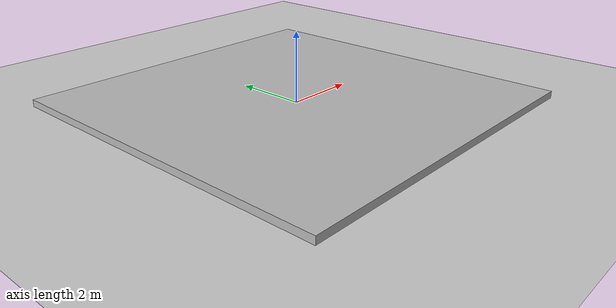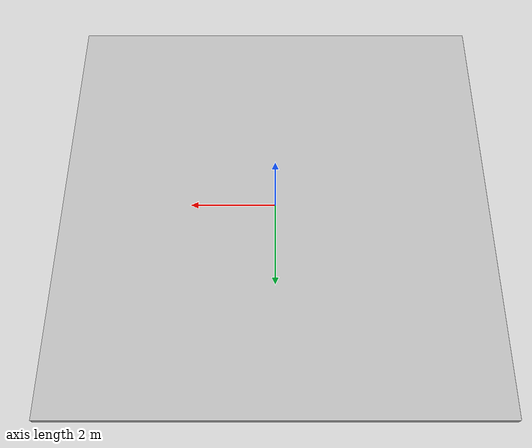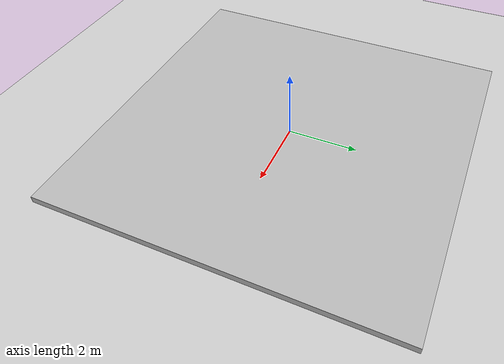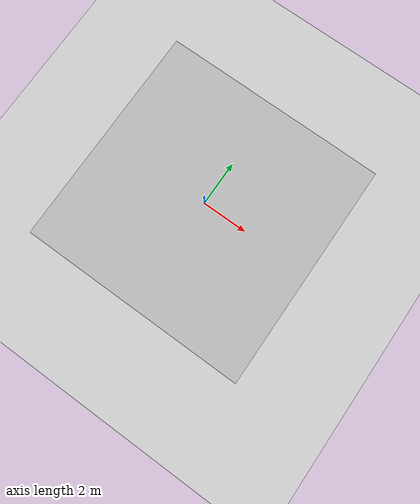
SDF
<?xml version="1.0"?>
<sdf version="1.6">
  <world name="world">

    <plugin name="gazebo_ros_state" filename="libgazebo_ros_state.so">
      <ros>
        <namespace>/demo</namespace>
        <argument>model_states:=model_states_demo</argument>
        <argument>link_states:=link_states_demo</argument>
      </ros>

      <update_rate>10.0</update_rate>
    </plugin>

  <include>
    <uri>model://sun</uri>
  </include>

    <model name='ground_plane'>
    <static>1</static>
    <link name='link'>
      <collision name='collision'>
        <geometry>
          <plane>
            <normal>0 0 1</normal>
            <size>100 100</size>
          </plane>
        </geometry>
        <surface>
          <contact>
            <collide_bitmask>65535</collide_bitmask>
            <ode/>
          </contact>

          <friction>
            <ode>
              <mu>0.7</mu>
              <mu2>0.7</mu2>
            </ode>
            <torsional>
              <ode/>
            </torsional>
          </friction>
          <bounce>
            <restitution_coefficient>0.5</restitution_coefficient>
            <threshold>0.00</threshold>
          </bounce>
        </surface>
        <max_contacts>10</max_contacts>
      </collision>
      <visual name='visual'>
        <cast_shadows>0</cast_shadows>
        <geometry>
          <plane>
            <normal>0 0 1</normal>
            <size>100 100</size>
          </plane>
        </geometry>
        <material>
          <script>
            <name>Gazebo/Grey</name>
          </script>
        </material>
      </visual>
      <self_collide>0</self_collide>
      <enable_wind>0</enable_wind>
      <kinematic>0</kinematic>
    </link>
  </model>

  <model name='dump' canonical_link='body'>
      <pose relative_to='world'>0.0 0.0 0.1 0.0 0.0 0.0</pose>

      <link name='body'>
        <pose relative_to='__model__'>0.0 0.0 0.0 0.0 0.0 0.0</pose>

        <inertial>
          <mass>10000.0</mass>
          <inertia>
            <ixx>10000</ixx>
            <ixy>0</ixy>
            <ixz>0</ixz>
            <iyy>10000</iyy>
            <iyz>0</iyz>
            <izz>10000</izz>
          </inertia>
        </inertial>

        <visual name='visual'>
          <geometry>
            <box>
              <size>10 10 0.2</size>
            </box>
          </geometry>
        </visual>

        <collision name='collision'>
          <geometry>
            <box>
              <size>10 10 0.2</size>
            </box>
          </geometry>
          <surface>
            <contact>
              <collide_bitmask>65535</collide_bitmask>
              <ode/>
            </contact>

          <friction>
            <ode>
              <mu>0.7</mu>
              <mu2>0.7</mu2>
            </ode>
            <torsional>
              <ode/>
            </torsional>
          </friction>
          <bounce>
            <restitution_coefficient>0.5</restitution_coefficient>
            <threshold>0.00</threshold>
          </bounce>
        </surface>
        </collision>

      </link>

    </model>

  <gravity>0.0 0.0 -9.81</gravity>
  </world>
</sdf>
